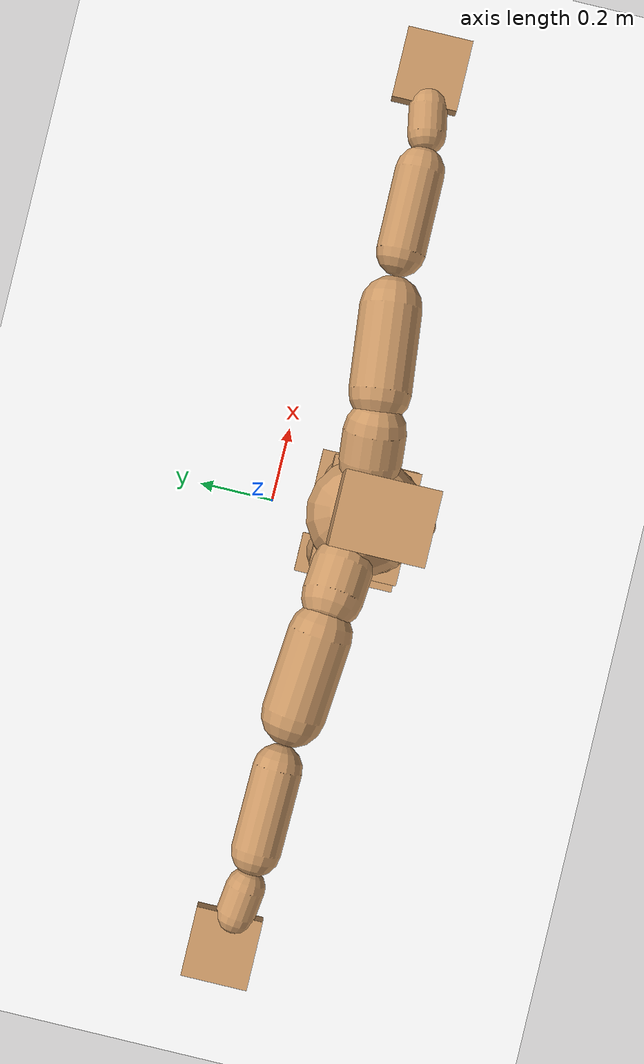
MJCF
<mujoco model="humanoid">
  <option integrator="implicitfast" />

  <visual>
    <global offwidth="1280" offheight="960" />
    <headlight active="1" ambient="0.34 0.34 0.34" diffuse="0.5 0.5 0.5" />
  </visual>

  <default>
    <joint damping="2" stiffness="2" armature="0.01" limited="true" solimplimit="0 .99 .01" />
    <geom condim="1" friction="0.7 0.005 0.0001" solimp=".99 .99 .003" solref="0.015 1" margin="0.001" rgba="0.8 0.6 .4 1" />
    <default class="smplcontact">
      <geom condim="3" friction="1. 0.005 0.0001" solref="0.015 1" solimp="0.98 0.98 0.001" priority="1" />
    </default>
    <default class="stiff_medium">
      <joint stiffness="10" />
    </default>
    <default class="stiff_medium_higher">
      <joint stiffness="50" />
    </default>
    <default class="stiff_high">
      <joint stiffness="100" />
    </default>
  </default>

  <asset>
    <texture type="skybox" builtin="gradient" rgb1="0.99 0.99 0.99" rgb2="0.608 0.828 0.892" width="100" />
    <texture builtin="flat" height="1278" mark="cross" markrgb="1 1 1" name="texgeom" random="0.01" rgb1="0.8 0.6 0.4" rgb2="0.8 0.6 0.4" type="cube" width="127" />
    <texture name="texplane" type="2d" builtin="checker" markrgb="1 1 1" rgb1="0.756 0.772 0.76" rgb2="0.6 0.6 0.6" width="100" height="100" />
    <material name="MatPlane" reflectance="0.5" texture="texplane" texrepeat="1 1" texuniform="true" />
    <material name="geom" texture="texgeom" texuniform="true" />
  </asset>

  <worldbody>
    <light name="tracking_light" pos="0 0 7" dir="0 0 -1" directional="true" cutoff="100" exponent="1" diffuse="1 1 1" specular="0.1 0.1 0.1" mode="trackcom" />
    <camera name="back" pos="0 3 2.4" xyaxes="-1 0 0 0 -1 2" mode="trackcom" />
    <camera name="side" pos="-3 0 2.4" xyaxes="0 -1 0 1 0 2" mode="trackcom" />
    <camera name="front_side" pos="-2.8 -2.8 0.8" xyaxes="0.5 -0.5 0 0.1 0.1 1" mode="trackcom" />
    <geom condim="3" name="floor" pos="0 0 0" rgba="1 1 1 1" size="100 100 .2" type="plane" material="MatPlane" />
    <body name="Pelvis" pos="-0.0018 -0.2233 0.945588" euler="90 0 0">
      <site name="Pelvis" size="0.01" />
      <freejoint name="Pelvis" />
      <geom type="box" pos="-0.0000 -0.0121 -0.0055" size="0.118379 0.0799528 0.0919124" quat="1.0000 0.0000 0.0000 0.0000" density="3165.830099" name="Pelvis" />
      <body name="L_Hip" pos="0.069932 -0.0919681 -0.00684227">
        <joint name="L_Hip_x" type="hinge" pos="0 0 0" axis="1 0 0" stiffness="10" range="-160.0 22.92" class="stiff_medium" damping="15" />
        <joint name="L_Hip_y" type="hinge" pos="0 0 0" axis="0 1 0" stiffness="10" range="-70.0 70.0" class="stiff_medium" damping="10" />
        <joint name="L_Hip_z" type="hinge" pos="0 0 0" axis="0 0 1" stiffness="10" range="-28.65 90.0" class="stiff_medium" damping="10" />
        <geom type="capsule" density="2040.816327" fromto="0.00694289 -0.0754662 -0.000905594 0.0275703 -0.302066 -0.00362238" size="0.0658273" name="L_Hip" />
        <body name="L_Knee" pos="0.0345132 -0.377532 -0.00452797">
          <joint name="L_Knee_x" type="hinge" pos="0 0 0" axis="1 0 0" range="-5.16 171.89" damping="8" />
          <joint name="L_Knee_y" type="hinge" pos="0 0 0" axis="0 1 0" range="-4.58 6.88" damping="8" />
          <joint name="L_Knee_z" type="hinge" pos="0 0 0" axis="0 0 1" range="-6.88 4.58" damping="8" />
          <geom type="capsule" density="1234.567901" fromto="-0.00271678 -0.0800948 -0.00875408 -0.0109678 -0.320379 -0.0352176" size="0.0579066" name="L_Knee" />
          <body name="L_Ankle" pos="-0.0136845 -0.400474 -0.0439716">
            <joint name="L_Ankle_x" type="hinge" pos="0 0 0" axis="1 0 0" range="-45.84 45.84" class="stiff_medium" damping="6" />
            <joint name="L_Ankle_y" type="hinge" pos="0 0 0" axis="0 1 0" range="-74.48 22.92" class="stiff_medium" damping="3" />
            <joint name="L_Ankle_z" type="hinge" pos="0 0 0" axis="0 0 1" range="-4.58 4.58" class="stiff_medium" damping="6" />
            <geom type="box" pos="0.0234448 -0.0240486 0.0243504" size="0.0516985 0.0496648 0.0909808" quat="1.0000 0.0000 0.0000 0.0000" density="449.071558" name="L_Ankle" class="smplcontact" />
            <body name="L_Toe" pos="0.0265641 -0.0561469 0.120042">
              <joint name="L_Toe_x" type="hinge" pos="0 0 0" axis="1 0 0" range="-91.67 22.92" />
              <joint name="L_Toe_y" type="hinge" pos="0 0 0" axis="0 1 0" range="-4.58 4.58" />
              <joint name="L_Toe_z" type="hinge" pos="0 0 0" axis="0 0 1" range="-4.58 4.58" />
              <geom type="box" pos="-0.00301865 0.00553419 0.0249542" size="0.0511633 0.0214072 0.05309" quat="1.0000 0.0000 0.0000 0.0000" density="423.206892" name="L_Toe" class="smplcontact" />
            </body>
          </body>
        </body>
      </body>
      <body name="R_Hip" pos="-0.0681208 -0.0910625 -0.00432673">
        <joint name="R_Hip_x" type="hinge" pos="0 0 0" axis="1 0 0" stiffness="10" range="-160.0 22.92" class="stiff_medium" damping="15" />
        <joint name="R_Hip_y" type="hinge" pos="0 0 0" axis="0 1 0" stiffness="10" range="-70.0 70.0" class="stiff_medium" damping="10" />
        <joint name="R_Hip_z" type="hinge" pos="0 0 0" axis="0 0 1" stiffness="10" range="-90.0 28.65" class="stiff_medium" damping="10" />
        <geom type="capsule" density="2040.816327" fromto="-0.00774786 -0.0769755 -0.00181119 -0.0307902 -0.308003 -0.00714413" size="0.064864" name="R_Hip" />
        <body name="R_Knee" pos="-0.0385381 -0.384978 -0.00895532">
          <joint name="R_Knee_x" type="hinge" pos="0 0 0" axis="1 0 0" range="-5.16 171.89" damping="8" />
          <joint name="R_Knee_y" type="hinge" pos="0 0 0" axis="0 1 0" range="-6.88 4.58" damping="8" />
          <joint name="R_Knee_z" type="hinge" pos="0 0 0" axis="0 0 1" range="-4.58 6.88" damping="8" />
          <geom type="capsule" density="1234.567901" fromto="0.00321989 -0.0801954 -0.00855284 0.0126783 -0.320681 -0.0340101" size="0.0579066" name="R_Knee" />
          <body name="R_Ankle" pos="0.0158982 -0.400876 -0.0425629">
            <joint name="R_Ankle_x" type="hinge" pos="0 0 0" axis="1 0 0" range="-45.84 45.84" class="stiff_medium" damping="6" />
            <joint name="R_Ankle_y" type="hinge" pos="0 0 0" axis="0 1 0" range="-22.92 74.48" class="stiff_medium" damping="3" />
            <joint name="R_Ankle_z" type="hinge" pos="0 0 0" axis="0 0 1" range="-4.58 4.58" class="stiff_medium" damping="6" />
            <geom type="box" pos="-0.0213318 -0.0175082 0.0257591" size="0.0516985 0.0511633 0.0925863" quat="1.0000 0.0000 0.0000 0.0000" density="434.700981" name="R_Ankle" class="smplcontact" />
            <body name="R_Toe" pos="-0.0255579 -0.048399 0.124066">
              <joint name="R_Toe_x" type="hinge" pos="0 0 0" axis="1 0 0" range="-91.67 22.92" />
              <joint name="R_Toe_y" type="hinge" pos="0 0 0" axis="0 1 0" range="-4.58 4.58" />
              <joint name="R_Toe_z" type="hinge" pos="0 0 0" axis="0 0 1" range="-4.58 4.58" />
              <geom type="box" pos="0.00422611 0.00452797 0.0228411" size="0.0512704 0.0231198 0.0527689" quat="1.0000 0.0000 0.0000 0.0000" density="407.384095" name="R_Toe" class="smplcontact" />
            </body>
          </body>
        </body>
      </body>
      <body name="Torso" pos="-0.00251554 0.109678 -0.026866">
        <joint name="Torso_x" type="hinge" pos="0 0 0" axis="1 0 0" range="-25.78 57.3" class="stiff_medium" damping="15" />
        <joint name="Torso_y" type="hinge" pos="0 0 0" axis="0 1 0" range="-57.3 57.3" class="stiff_high" damping="20" />
        <joint name="Torso_z" type="hinge" pos="0 0 0" axis="0 0 1" range="-34.38 34.38" class="stiff_high" damping="20" />
        <geom type="capsule" density="2040.816327" fromto="0.00251554 0.0611779 0.000503108 0.00301865 0.0747619 0.00060373" size="0.0851574" name="Torso" />
        <body name="Spine" pos="0.00553419 0.13604 0.00110684">
          <joint name="Spine_x" type="hinge" pos="0 0 0" axis="1 0 0" stiffness="10" range="-25.78 57.3" class="stiff_medium" damping="15" />
          <joint name="Spine_y" type="hinge" pos="0 0 0" axis="0 1 0" stiffness="10" range="-57.3 57.3" class="stiff_high" damping="8" />
          <joint name="Spine_z" type="hinge" pos="0 0 0" axis="0 0 1" stiffness="20" range="-34.38 34.38" class="stiff_high" damping="12" />
          <geom type="capsule" density="2040.816327" fromto="0.000704351 0.0239479 0.0114709 0.000804973 0.0292809 0.014087" size="0.0836071" name="Spine" />
          <body name="Chest" pos="0.00150932 0.0532288 0.0255579">
            <joint name="Chest_x" type="hinge" pos="0 0 0" axis="1 0 0" stiffness="10" range="-25.78 57.3" class="stiff_medium" damping="15" />
            <joint name="Chest_y" type="hinge" pos="0 0 0" axis="0 1 0" stiffness="10" range="-57.3 57.3" class="stiff_high" damping="8" />
            <joint name="Chest_z" type="hinge" pos="0 0 0" axis="0 0 1" stiffness="20" range="-34.38 34.38" class="stiff_high" damping="12" />
            <geom type="capsule" density="2040.816327" fromto="-0.000905594 0.0686239 -0.0174075 -0.00100622 0.0838178 -0.0213318" size="0.110959" name="Chest" />
            <body name="Neck" pos="-0.0028174 0.21523 -0.0431667">
              <joint name="Neck_x" type="hinge" pos="0 0 0" axis="1 0 0" range="-28.65 57.3" class="stiff_medium_higher" damping="10" />
              <joint name="Neck_y" type="hinge" pos="0 0 0" axis="0 1 0" range="-40.11 40.11" class="stiff_medium_higher" damping="10" />
              <joint name="Neck_z" type="hinge" pos="0 0 0" axis="0 0 1" range="-40.11 40.11" class="stiff_medium_higher" damping="10" />
              <geom type="capsule" density="1000" fromto="0.00100622 0.0130808 0.010364 0.00412549 0.0523232 0.0413555" size="0.0482817" name="Neck" />
              <body name="Head" pos="0.00523232 0.065404 0.0516189">
                <joint name="Head_x" type="hinge" pos="0 0 0" axis="1 0 0" range="-28.65 57.3" class="stiff_medium_higher" damping="2" />
                <joint name="Head_y" type="hinge" pos="0 0 0" axis="0 1 0" range="-40.11 40.11" class="stiff_medium_higher" damping="2" />
                <joint name="Head_z" type="hinge" pos="0 0 0" axis="0 0 1" range="-40.11 40.11" class="stiff_medium_higher" damping="2" />
                <geom type="box" pos="-0.00422611 0.0881445 -0.0116721" size="0.0634103 0.120752 0.0795245" quat="1.0000 0.0000 0.0000 0.0000" density="1018.069894" name="Head" />
                <geom type="capsule" name="nose" size="0.0209275 0.0104637" pos="0 0.0704351 0.0503108" quat="1 0 0 0" mass="0" contype="0" conaffinity="0" />
              </body>
            </body>
            <body name="L_Thorax" pos="0.0792898 0.122456 -0.034312">
              <joint name="L_Thorax_x" type="hinge" pos="0 0 0" axis="1 0 0" range="-10.89 4.58" class="stiff_medium_higher" damping="20" />
              <joint name="L_Thorax_y" type="hinge" pos="0 0 0" axis="0 1 0" range="-28.65 17.19" class="stiff_medium_higher" damping="20" />
              <joint name="L_Thorax_z" type="hinge" pos="0 0 0" axis="0 0 1" range="-31.51 40.11" class="stiff_medium_higher" damping="20" />
              <geom type="capsule" density="1000" fromto="0.0183131 0.00613792 -0.00181119 0.0732525 0.0245517 -0.00714413" size="0.058352" name="L_Thorax" />
              <body name="L_Shoulder" pos="0.0915657 0.0306896 -0.00895532">
                <joint name="L_Shoulder_x" type="hinge" pos="0 0 0" axis="1 0 0" range="-97.4 97.4" class="stiff_medium" damping="6" />
                <joint name="L_Shoulder_y" type="hinge" pos="0 0 0" axis="0 1 0" range="-108.86 80.21" class="stiff_medium" damping="6" />
                <joint name="L_Shoulder_z" type="hinge" pos="0 0 0" axis="0 0 1" range="-97.4 85.94" class="stiff_medium" damping="6" />
                <geom type="capsule" density="1000" fromto="0.0522226 -0.00261616 -0.00553419 0.208991 -0.0102634 -0.0221368" size="0.057904" name="L_Shoulder" />
                <body name="L_Elbow" pos="0.261214 -0.0128796 -0.0276709">
                  <joint name="L_Elbow_x" type="hinge" pos="0 0 0" axis="1 0 0" range="-17.19 4.58" damping="5" />
                  <joint name="L_Elbow_y" type="hinge" pos="0 0 0" axis="0 1 0" range="-180.0 17.19" damping="5" />
                  <joint name="L_Elbow_z" type="hinge" pos="0 0 0" axis="0 0 1" range="-100.84 4.58" damping="5" />
                  <geom type="capsule" density="1000" fromto="0.0501096 0.00181119 -0.000201243 0.200639 0.00724476 -0.000905594" size="0.04536" name="L_Elbow" />
                  <body name="L_Wrist" pos="0.250749 0.00905594 -0.00120746">
                    <joint name="L_Wrist_x" type="hinge" pos="0 0 0" axis="1 0 0" range="-180.0 22.92" />
                    <joint name="L_Wrist_y" type="hinge" pos="0 0 0" axis="0 1 0" range="-17.19 17.19" />
                    <joint name="L_Wrist_z" type="hinge" pos="0 0 0" axis="0 0 1" range="-22.92 22.92" />
                    <geom type="capsule" density="1000" fromto="0.0169044 -0.00160995 -0.00301865 0.0676177 -0.0065404 -0.0120746" size="0.035616" name="L_Wrist" class="smplcontact" />
                    <body name="L_Hand" pos="0.0845221 -0.00825097 -0.0149926">
                      <joint name="L_Hand_x" type="hinge" pos="0 0 0" axis="1 0 0" range="-17.19 17.19" />
                      <joint name="L_Hand_y" type="hinge" pos="0 0 0" axis="0 1 0" range="-51.57 51.57" />
                      <joint name="L_Hand_z" type="hinge" pos="0 0 0" axis="0 0 1" range="-91.67 91.67" />
                      <geom type="box" pos="0.0496064 0.00100622 -0.00583605" size="0.06552 0.017696 0.060256" quat="1.0000 0.0000 0.0000 0.0000" density="400.552564" name="L_Hand" class="smplcontact" />
                    </body>
                  </body>
                </body>
              </body>
            </body>
            <body name="R_Thorax" pos="-0.0823085 0.119538 -0.0388399">
              <joint name="R_Thorax_x" type="hinge" pos="0 0 0" axis="1 0 0" range="-10.89 4.58" class="stiff_medium_higher" damping="20" />
              <joint name="R_Thorax_y" type="hinge" pos="0 0 0" axis="0 1 0" range="-17.19 28.65" class="stiff_medium_higher" damping="20" />
              <joint name="R_Thorax_z" type="hinge" pos="0 0 0" axis="0 0 1" range="-40.11 31.51" class="stiff_medium_higher" damping="20" />
              <geom type="capsule" density="1000" fromto="-0.0193193 0.0065404 -0.00181119 -0.0772774 0.0261616 -0.00734538" size="0.057232" name="R_Thorax" />
              <body name="R_Shoulder" pos="-0.0965967 0.0328026 -0.00915657">
                <joint name="R_Shoulder_x" type="hinge" pos="0 0 0" axis="1 0 0" range="-97.4 97.4" class="stiff_medium" damping="6" />
                <joint name="R_Shoulder_y" type="hinge" pos="0 0 0" axis="0 1 0" range="-80.21 108.86" class="stiff_medium" damping="6" />
                <joint name="R_Shoulder_z" type="hinge" pos="0 0 0" axis="0 0 1" range="-85.94 97.4" class="stiff_medium" damping="6" />
                <geom type="capsule" density="1000" fromto="-0.0510152 -0.00271678 -0.00432673 -0.204262 -0.0107665 -0.0172063" size="0.059472" name="R_Shoulder" />
                <body name="R_Elbow" pos="-0.255277 -0.0133827 -0.021533">
                  <joint name="R_Elbow_x" type="hinge" pos="0 0 0" axis="1 0 0" range="-17.19 4.58" damping="5" />
                  <joint name="R_Elbow_y" type="hinge" pos="0 0 0" axis="0 1 0" range="-17.19 180.0" damping="5" />
                  <joint name="R_Elbow_z" type="hinge" pos="0 0 0" axis="0 0 1" range="-4.58 100.84" damping="5" />
                  <geom type="capsule" density="1000" fromto="-0.0514176 0.00160995 -0.00110684 -0.205469 0.00623854 -0.00442735" size="0.045696" name="R_Elbow" />
                  <body name="R_Wrist" pos="-0.256887 0.00784848 -0.00563481">
                    <joint name="R_Wrist_x" type="hinge" pos="0 0 0" axis="1 0 0" range="-180.0 22.92" />
                    <joint name="R_Wrist_y" type="hinge" pos="0 0 0" axis="0 1 0" range="-17.19 17.19" />
                    <joint name="R_Wrist_z" type="hinge" pos="0 0 0" axis="0 0 1" range="-22.92 22.92" />
                    <geom type="capsule" density="1000" fromto="-0.0170051 -0.00120746 -0.00211305 -0.0681208 -0.00493046 -0.00835159" size="0.036512" name="R_Wrist" class="smplcontact" />
                    <body name="R_Hand" pos="-0.0851259 -0.00613792 -0.010364">
                      <joint name="R_Hand_x" type="hinge" pos="0 0 0" axis="1 0 0" range="-17.19 17.19" />
                      <joint name="R_Hand_y" type="hinge" pos="0 0 0" axis="0 1 0" range="-51.57 51.57" />
                      <joint name="R_Hand_z" type="hinge" pos="0 0 0" axis="0 0 1" range="-91.67 91.67" />
                      <geom type="box" pos="-0.0464872 -0.000905594 -0.00794911" size="0.063728 0.018368 0.061152" quat="1.0000 0.0000 0.0000 0.0000" density="403.679611" name="R_Hand" class="smplcontact" />
                    </body>
                  </body>
                </body>
              </body>
            </body>
          </body>
        </body>
      </body>
    </body>
  </worldbody>
  <actuator>
    <general name="L_Hip_x" joint="L_Hip_x" biastype="affine" gainprm="287.33006409732246" biasprm="-215.3247604770444 -180 -2.0" ctrllimited="true" ctrlrange="-1 1" forcerange="-360 360" />
    <general name="L_Hip_y" joint="L_Hip_y" biastype="affine" gainprm="219.9114857512855" biasprm="0.0 -180 -2.0" ctrllimited="true" ctrlrange="-1 1" forcerange="-360 360" />
    <general name="L_Hip_z" joint="L_Hip_z" biastype="affine" gainprm="186.3749841742145" biasprm="96.3683546488669 -180 -2.0" ctrllimited="true" ctrlrange="-1 1" forcerange="-360 360" />
    <general name="L_Knee_x" joint="L_Knee_x" biastype="affine" gainprm="278.10948965903646" biasprm="261.8988715665131 -180 -2.0" ctrllimited="true" ctrlrange="-1 1" forcerange="-360 360" />
    <general name="L_Knee_y" joint="L_Knee_y" biastype="affine" gainprm="18.001325905069514" biasprm="3.612831551628262 -180 -2.0" ctrllimited="true" ctrlrange="-1 1" forcerange="-360 360" />
    <general name="L_Knee_z" joint="L_Knee_z" biastype="affine" gainprm="18.001325905069514" biasprm="-3.612831551628262 -180 -2.0" ctrllimited="true" ctrlrange="-1 1" forcerange="-360 360" />
    <general name="L_Ankle_x" joint="L_Ankle_x" biastype="affine" gainprm="72.00530362027807" biasprm="0.0 -90 -2.0" ctrllimited="true" ctrlrange="-1 1" forcerange="-180 180" />
    <general name="L_Ankle_y" joint="L_Ankle_y" biastype="affine" gainprm="76.49778111491148" biasprm="-40.49512930477244 -90 -2.0" ctrllimited="true" ctrlrange="-1 1" forcerange="-180 180" />
    <general name="L_Ankle_z" joint="L_Ankle_z" biastype="affine" gainprm="7.1942471767206255" biasprm="0.0 -90 -2.0" ctrllimited="true" ctrlrange="-1 1" forcerange="-180 180" />
    <general name="L_Toe_x" joint="L_Toe_x" biastype="affine" gainprm="71.99902043497087" biasprm="-43.19689898685965 -72 -0.8" ctrllimited="true" ctrlrange="-1 1" forcerange="-144 144" />
    <general name="L_Toe_y" joint="L_Toe_y" biastype="affine" gainprm="5.755397741376501" biasprm="0.0 -72 -0.8" ctrllimited="true" ctrlrange="-1 1" forcerange="-144 144" />
    <general name="L_Toe_z" joint="L_Toe_z" biastype="affine" gainprm="5.755397741376501" biasprm="0.0 -72 -0.8" ctrllimited="true" ctrlrange="-1 1" forcerange="-144 144" />
    <general name="R_Hip_x" joint="R_Hip_x" biastype="affine" gainprm="287.33006409732246" biasprm="-215.3247604770444 -180 -2.0" ctrllimited="true" ctrlrange="-1 1" forcerange="-360 360" />
    <general name="R_Hip_y" joint="R_Hip_y" biastype="affine" gainprm="219.9114857512855" biasprm="0.0 -180 -2.0" ctrllimited="true" ctrlrange="-1 1" forcerange="-360 360" />
    <general name="R_Hip_z" joint="R_Hip_z" biastype="affine" gainprm="186.3749841742145" biasprm="-96.3683546488669 -180 -2.0" ctrllimited="true" ctrlrange="-1 1" forcerange="-360 360" />
    <general name="R_Knee_x" joint="R_Knee_x" biastype="affine" gainprm="278.10948965903646" biasprm="261.8988715665131 -180 -2.0" ctrllimited="true" ctrlrange="-1 1" forcerange="-360 360" />
    <general name="R_Knee_y" joint="R_Knee_y" biastype="affine" gainprm="18.001325905069514" biasprm="-3.612831551628262 -180 -2.0" ctrllimited="true" ctrlrange="-1 1" forcerange="-360 360" />
    <general name="R_Knee_z" joint="R_Knee_z" biastype="affine" gainprm="18.001325905069514" biasprm="3.612831551628262 -180 -2.0" ctrllimited="true" ctrlrange="-1 1" forcerange="-360 360" />
    <general name="R_Ankle_x" joint="R_Ankle_x" biastype="affine" gainprm="72.00530362027807" biasprm="0.0 -90 -2.0" ctrllimited="true" ctrlrange="-1 1" forcerange="-180 180" />
    <general name="R_Ankle_y" joint="R_Ankle_y" biastype="affine" gainprm="76.49778111491148" biasprm="40.49512930477244 -90 -2.0" ctrllimited="true" ctrlrange="-1 1" forcerange="-180 180" />
    <general name="R_Ankle_z" joint="R_Ankle_z" biastype="affine" gainprm="7.1942471767206255" biasprm="0.0 -90 -2.0" ctrllimited="true" ctrlrange="-1 1" forcerange="-180 180" />
    <general name="R_Toe_x" joint="R_Toe_x" biastype="affine" gainprm="71.99902043497087" biasprm="-43.19689898685965 -72 -0.8" ctrllimited="true" ctrlrange="-1 1" forcerange="-144 144" />
    <general name="R_Toe_y" joint="R_Toe_y" biastype="affine" gainprm="5.755397741376501" biasprm="0.0 -72 -0.8" ctrllimited="true" ctrlrange="-1 1" forcerange="-144 144" />
    <general name="R_Toe_z" joint="R_Toe_z" biastype="affine" gainprm="5.755397741376501" biasprm="0.0 -72 -0.8" ctrllimited="true" ctrlrange="-1 1" forcerange="-144 144" />
    <general name="Torso_x" joint="Torso_x" biastype="affine" gainprm="174.00234510682668" biasprm="66.0153336274335 -240 -4.0" ctrllimited="true" ctrlrange="-1 1" forcerange="-360 360" />
    <general name="Torso_y" joint="Torso_y" biastype="affine" gainprm="240.0176787342602" biasprm="0.0 -240 -4.0" ctrllimited="true" ctrlrange="-1 1" forcerange="-360 360" />
    <general name="Torso_z" joint="Torso_z" biastype="affine" gainprm="144.01060724055614" biasprm="0.0 -240 -4.0" ctrllimited="true" ctrlrange="-1 1" forcerange="-360 360" />
    <general name="Spine_x" joint="Spine_x" biastype="affine" gainprm="174.00234510682668" biasprm="66.0153336274335 -240 -4.0" ctrllimited="true" ctrlrange="-1 1" forcerange="-360 360" />
    <general name="Spine_y" joint="Spine_y" biastype="affine" gainprm="240.0176787342602" biasprm="0.0 -240 -4.0" ctrllimited="true" ctrlrange="-1 1" forcerange="-360 360" />
    <general name="Spine_z" joint="Spine_z" biastype="affine" gainprm="144.01060724055614" biasprm="0.0 -240 -4.0" ctrllimited="true" ctrlrange="-1 1" forcerange="-360 360" />
    <general name="Chest_x" joint="Chest_x" biastype="affine" gainprm="174.00234510682668" biasprm="66.0153336274335 -240 -4.0" ctrllimited="true" ctrlrange="-1 1" forcerange="-360 360" />
    <general name="Chest_y" joint="Chest_y" biastype="affine" gainprm="240.0176787342602" biasprm="0.0 -240 -4.0" ctrllimited="true" ctrlrange="-1 1" forcerange="-360 360" />
    <general name="Chest_z" joint="Chest_z" biastype="affine" gainprm="144.01060724055614" biasprm="0.0 -240 -4.0" ctrllimited="true" ctrlrange="-1 1" forcerange="-360 360" />
    <general name="Neck_x" joint="Neck_x" biastype="affine" gainprm="27.00198885760427" biasprm="9.000662952534757 -36 -0.8" ctrllimited="true" ctrlrange="-1 1" forcerange="-72 72" />
    <general name="Neck_y" joint="Neck_y" biastype="affine" gainprm="25.20185626709732" biasprm="0.0 -36 -0.8" ctrllimited="true" ctrlrange="-1 1" forcerange="-72 72" />
    <general name="Neck_z" joint="Neck_z" biastype="affine" gainprm="25.20185626709732" biasprm="0.0 -36 -0.8" ctrllimited="true" ctrlrange="-1 1" forcerange="-72 72" />
    <general name="Head_x" joint="Head_x" biastype="affine" gainprm="18.001325905069514" biasprm="6.000441968356505 -24 -0.8" ctrllimited="true" ctrlrange="-1 1" forcerange="-48 48" />
    <general name="Head_y" joint="Head_y" biastype="affine" gainprm="16.801237511398213" biasprm="0.0 -24 -0.8" ctrllimited="true" ctrlrange="-1 1" forcerange="-48 48" />
    <general name="Head_z" joint="Head_z" biastype="affine" gainprm="16.801237511398213" biasprm="0.0 -24 -0.8" ctrllimited="true" ctrlrange="-1 1" forcerange="-48 48" />
    <general name="L_Thorax_x" joint="L_Thorax_x" biastype="affine" gainprm="16.200146117011364" biasprm="-6.6078165480505335 -120 -1.6" ctrllimited="true" ctrlrange="-1 1" forcerange="-240 240" />
    <general name="L_Thorax_y" joint="L_Thorax_y" biastype="affine" gainprm="48.00353574685204" biasprm="-12.00088393671301 -120 -1.6" ctrllimited="true" ctrlrange="-1 1" forcerange="-240 240" />
    <general name="L_Thorax_z" joint="L_Thorax_z" biastype="affine" gainprm="75.00028861670033" biasprm="9.00589894029074 -120 -1.6" ctrllimited="true" ctrlrange="-1 1" forcerange="-240 240" />
    <general name="L_Shoulder_x" joint="L_Shoulder_x" biastype="affine" gainprm="81.5976331892389" biasprm="0.0 -48 -1.6" ctrllimited="true" ctrlrange="-1 1" forcerange="-96 96" />
    <general name="L_Shoulder_y" joint="L_Shoulder_y" biastype="affine" gainprm="79.19745640189629" biasprm="-12.00088393671301 -48 -1.6" ctrllimited="true" ctrlrange="-1 1" forcerange="-96 96" />
    <general name="L_Shoulder_z" joint="L_Shoulder_z" biastype="affine" gainprm="76.79727961455369" biasprm="-4.800353574685214 -48 -1.6" ctrllimited="true" ctrlrange="-1 1" forcerange="-96 96" />
    <general name="L_Elbow_x" joint="L_Elbow_x" biastype="affine" gainprm="13.67849441372996" biasprm="-7.923096672353461 -72 -0.8" ctrllimited="true" ctrlrange="-1 1" forcerange="-144 144" />
    <general name="L_Elbow_y" joint="L_Elbow_y" biastype="affine" gainprm="123.89813107227425" biasprm="-102.29653998619085 -72 -0.8" ctrllimited="true" ctrlrange="-1 1" forcerange="-144 144" />
    <general name="L_Elbow_z" joint="L_Elbow_z" biastype="affine" gainprm="66.23733950828719" biasprm="-60.4819417669107 -72 -0.8" ctrllimited="true" ctrlrange="-1 1" forcerange="-144 144" />
    <general name="L_Wrist_x" joint="L_Wrist_x" biastype="affine" gainprm="21.24973270888136" biasprm="-16.449379134196157 -12 -0.8" ctrllimited="true" ctrlrange="-1 1" forcerange="-24 24" />
    <general name="L_Wrist_y" joint="L_Wrist_y" biastype="affine" gainprm="3.6002651810139037" biasprm="0.0 -12 -0.8" ctrllimited="true" ctrlrange="-1 1" forcerange="-24 24" />
    <general name="L_Wrist_z" joint="L_Wrist_z" biastype="affine" gainprm="4.800353574685205" biasprm="0.0 -12 -0.8" ctrllimited="true" ctrlrange="-1 1" forcerange="-24 24" />
    <general name="L_Hand_x" joint="L_Hand_x" biastype="affine" gainprm="3.6002651810139037" biasprm="0.0 -12 -0.8" ctrllimited="true" ctrlrange="-1 1" forcerange="-24 24" />
    <general name="L_Hand_y" joint="L_Hand_y" biastype="affine" gainprm="10.800795543041708" biasprm="0.0 -12 -0.8" ctrllimited="true" ctrlrange="-1 1" forcerange="-24 24" />
    <general name="L_Hand_z" joint="L_Hand_z" biastype="affine" gainprm="19.199319903638422" biasprm="0.0 -12 -0.8" ctrllimited="true" ctrlrange="-1 1" forcerange="-24 24" />
    <general name="R_Thorax_x" joint="R_Thorax_x" biastype="affine" gainprm="16.200146117011364" biasprm="-6.6078165480505335 -120 -1.6" ctrllimited="true" ctrlrange="-1 1" forcerange="-240 240" />
    <general name="R_Thorax_y" joint="R_Thorax_y" biastype="affine" gainprm="48.00353574685204" biasprm="12.000883936713002 -120 -1.6" ctrllimited="true" ctrlrange="-1 1" forcerange="-240 240" />
    <general name="R_Thorax_z" joint="R_Thorax_z" biastype="affine" gainprm="75.00028861670033" biasprm="-9.00589894029074 -120 -1.6" ctrllimited="true" ctrlrange="-1 1" forcerange="-240 240" />
    <general name="R_Shoulder_x" joint="R_Shoulder_x" biastype="affine" gainprm="81.5976331892389" biasprm="0.0 -48 -1.6" ctrllimited="true" ctrlrange="-1 1" forcerange="-96 96" />
    <general name="R_Shoulder_y" joint="R_Shoulder_y" biastype="affine" gainprm="79.19745640189629" biasprm="12.00088393671301 -48 -1.6" ctrllimited="true" ctrlrange="-1 1" forcerange="-96 96" />
    <general name="R_Shoulder_z" joint="R_Shoulder_z" biastype="affine" gainprm="76.79727961455369" biasprm="4.800353574685204 -48 -1.6" ctrllimited="true" ctrlrange="-1 1" forcerange="-96 96" />
    <general name="R_Elbow_x" joint="R_Elbow_x" biastype="affine" gainprm="13.67849441372996" biasprm="-7.923096672353461 -72 -0.8" ctrllimited="true" ctrlrange="-1 1" forcerange="-144 144" />
    <general name="R_Elbow_y" joint="R_Elbow_y" biastype="affine" gainprm="123.89813107227425" biasprm="102.29653998619085 -72 -0.8" ctrllimited="true" ctrlrange="-1 1" forcerange="-144 144" />
    <general name="R_Elbow_z" joint="R_Elbow_z" biastype="affine" gainprm="66.23733950828719" biasprm="60.481941766910694 -72 -0.8" ctrllimited="true" ctrlrange="-1 1" forcerange="-144 144" />
    <general name="R_Wrist_x" joint="R_Wrist_x" biastype="affine" gainprm="21.24973270888136" biasprm="-16.449379134196157 -12 -0.8" ctrllimited="true" ctrlrange="-1 1" forcerange="-24 24" />
    <general name="R_Wrist_y" joint="R_Wrist_y" biastype="affine" gainprm="3.6002651810139037" biasprm="0.0 -12 -0.8" ctrllimited="true" ctrlrange="-1 1" forcerange="-24 24" />
    <general name="R_Wrist_z" joint="R_Wrist_z" biastype="affine" gainprm="4.800353574685205" biasprm="0.0 -12 -0.8" ctrllimited="true" ctrlrange="-1 1" forcerange="-24 24" />
    <general name="R_Hand_x" joint="R_Hand_x" biastype="affine" gainprm="3.6002651810139037" biasprm="0.0 -12 -0.8" ctrllimited="true" ctrlrange="-1 1" forcerange="-24 24" />
    <general name="R_Hand_y" joint="R_Hand_y" biastype="affine" gainprm="10.800795543041708" biasprm="0.0 -12 -0.8" ctrllimited="true" ctrlrange="-1 1" forcerange="-24 24" />
    <general name="R_Hand_z" joint="R_Hand_z" biastype="affine" gainprm="19.199319903638422" biasprm="0.0 -12 -0.8" ctrllimited="true" ctrlrange="-1 1" forcerange="-24 24" />
  </actuator>
  <contact>
    <exclude body1="Torso" body2="Chest" />
    <exclude body1="Head" body2="Chest" />
    <exclude body1="R_Knee" body2="R_Toe" />
    <exclude body1="R_Knee" body2="L_Ankle" />
    <exclude body1="R_Knee" body2="L_Toe" />
    <exclude body1="L_Knee" body2="L_Toe" />
    <exclude body1="L_Knee" body2="R_Ankle" />
    <exclude body1="L_Knee" body2="R_Toe" />
    <exclude body1="L_Shoulder" body2="Chest" />
    <exclude body1="R_Shoulder" body2="Chest" />
  </contact>
  <sensor>
    <framelinvel name="sensor_Pelvis_framelinvel" objtype="xbody" objname="Pelvis" />
    <framelinvel name="sensor_L_Hip_framelinvel" objtype="xbody" objname="L_Hip" />
    <framelinvel name="sensor_L_Knee_framelinvel" objtype="xbody" objname="L_Knee" />
    <framelinvel name="sensor_L_Ankle_framelinvel" objtype="xbody" objname="L_Ankle" />
    <framelinvel name="sensor_L_Toe_framelinvel" objtype="xbody" objname="L_Toe" />
    <framelinvel name="sensor_R_Hip_framelinvel" objtype="xbody" objname="R_Hip" />
    <framelinvel name="sensor_R_Knee_framelinvel" objtype="xbody" objname="R_Knee" />
    <framelinvel name="sensor_R_Ankle_framelinvel" objtype="xbody" objname="R_Ankle" />
    <framelinvel name="sensor_R_Toe_framelinvel" objtype="xbody" objname="R_Toe" />
    <framelinvel name="sensor_Torso_framelinvel" objtype="xbody" objname="Torso" />
    <framelinvel name="sensor_Spine_framelinvel" objtype="xbody" objname="Spine" />
    <framelinvel name="sensor_Chest_framelinvel" objtype="xbody" objname="Chest" />
    <framelinvel name="sensor_Neck_framelinvel" objtype="xbody" objname="Neck" />
    <framelinvel name="sensor_Head_framelinvel" objtype="xbody" objname="Head" />
    <framelinvel name="sensor_L_Thorax_framelinvel" objtype="xbody" objname="L_Thorax" />
    <framelinvel name="sensor_L_Shoulder_framelinvel" objtype="xbody" objname="L_Shoulder" />
    <framelinvel name="sensor_L_Elbow_framelinvel" objtype="xbody" objname="L_Elbow" />
    <framelinvel name="sensor_L_Wrist_framelinvel" objtype="xbody" objname="L_Wrist" />
    <framelinvel name="sensor_L_Hand_framelinvel" objtype="xbody" objname="L_Hand" />
    <framelinvel name="sensor_R_Thorax_framelinvel" objtype="xbody" objname="R_Thorax" />
    <framelinvel name="sensor_R_Shoulder_framelinvel" objtype="xbody" objname="R_Shoulder" />
    <framelinvel name="sensor_R_Elbow_framelinvel" objtype="xbody" objname="R_Elbow" />
    <framelinvel name="sensor_R_Wrist_framelinvel" objtype="xbody" objname="R_Wrist" />
    <framelinvel name="sensor_R_Hand_framelinvel" objtype="xbody" objname="R_Hand" />
    <frameangvel name="sensor_Pelvis_frameangvel" objtype="xbody" objname="Pelvis" />
    <frameangvel name="sensor_L_Hip_frameangvel" objtype="xbody" objname="L_Hip" />
    <frameangvel name="sensor_L_Knee_frameangvel" objtype="xbody" objname="L_Knee" />
    <frameangvel name="sensor_L_Ankle_frameangvel" objtype="xbody" objname="L_Ankle" />
    <frameangvel name="sensor_L_Toe_frameangvel" objtype="xbody" objname="L_Toe" />
    <frameangvel name="sensor_R_Hip_frameangvel" objtype="xbody" objname="R_Hip" />
    <frameangvel name="sensor_R_Knee_frameangvel" objtype="xbody" objname="R_Knee" />
    <frameangvel name="sensor_R_Ankle_frameangvel" objtype="xbody" objname="R_Ankle" />
    <frameangvel name="sensor_R_Toe_frameangvel" objtype="xbody" objname="R_Toe" />
    <frameangvel name="sensor_Torso_frameangvel" objtype="xbody" objname="Torso" />
    <frameangvel name="sensor_Spine_frameangvel" objtype="xbody" objname="Spine" />
    <frameangvel name="sensor_Chest_frameangvel" objtype="xbody" objname="Chest" />
    <frameangvel name="sensor_Neck_frameangvel" objtype="xbody" objname="Neck" />
    <frameangvel name="sensor_Head_frameangvel" objtype="xbody" objname="Head" />
    <frameangvel name="sensor_L_Thorax_frameangvel" objtype="xbody" objname="L_Thorax" />
    <frameangvel name="sensor_L_Shoulder_frameangvel" objtype="xbody" objname="L_Shoulder" />
    <frameangvel name="sensor_L_Elbow_frameangvel" objtype="xbody" objname="L_Elbow" />
    <frameangvel name="sensor_L_Wrist_frameangvel" objtype="xbody" objname="L_Wrist" />
    <frameangvel name="sensor_L_Hand_frameangvel" objtype="xbody" objname="L_Hand" />
    <frameangvel name="sensor_R_Thorax_frameangvel" objtype="xbody" objname="R_Thorax" />
    <frameangvel name="sensor_R_Shoulder_frameangvel" objtype="xbody" objname="R_Shoulder" />
    <frameangvel name="sensor_R_Elbow_frameangvel" objtype="xbody" objname="R_Elbow" />
    <frameangvel name="sensor_R_Wrist_frameangvel" objtype="xbody" objname="R_Wrist" />
    <frameangvel name="sensor_R_Hand_frameangvel" objtype="xbody" objname="R_Hand" />
    <subtreelinvel name="Chest_subtreelinvel" body="Chest" />
    <gyro name="Pelvis_gyro" site="Pelvis" />
  </sensor>
</mujoco>
